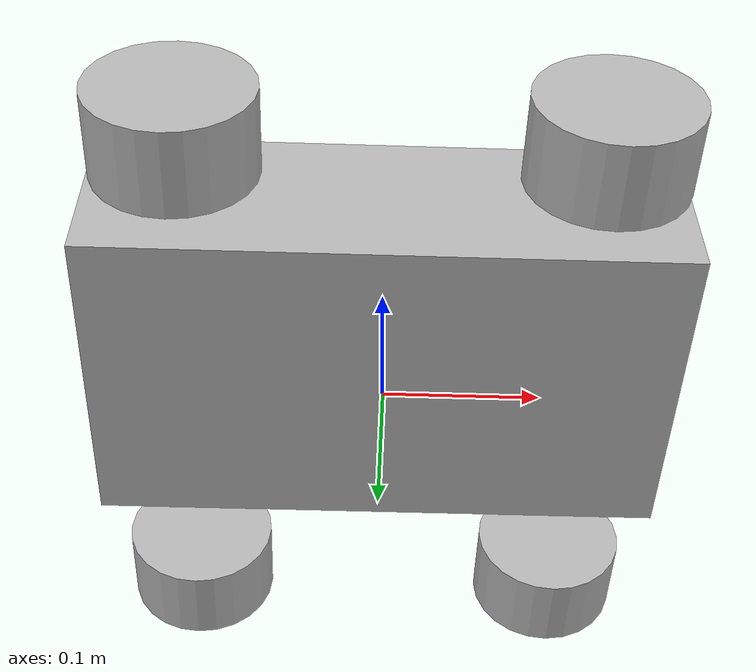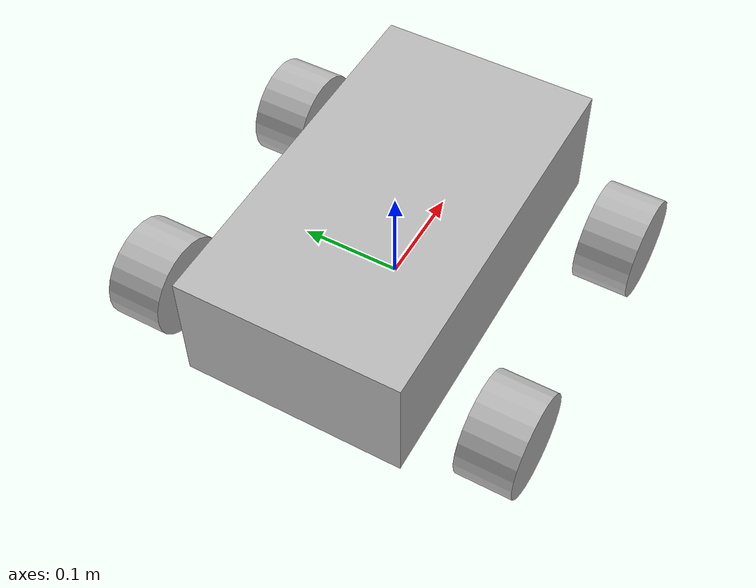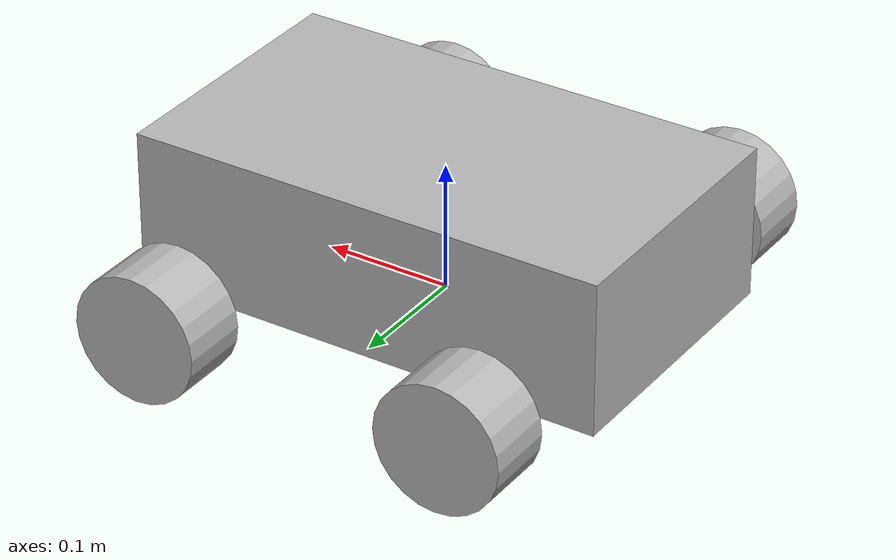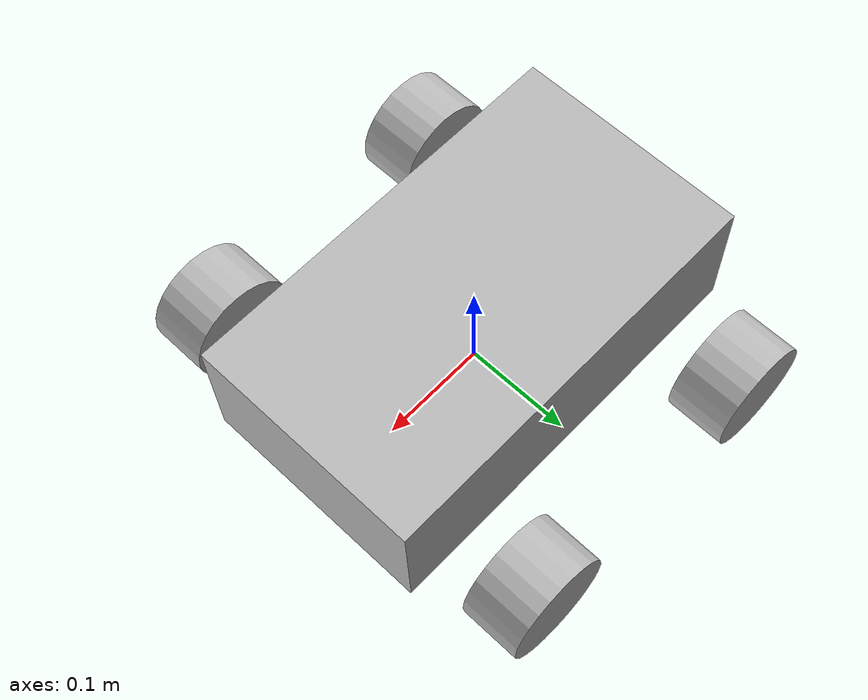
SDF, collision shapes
<?xml version='1.0'?>
<sdf version='1.5'>
  <model name="eduard-mecanum-swarm-3">
    <static>false</static>
    <pose>0 0 0 0 0 0</pose>
      <!-- chassis -->
      <link name="chassis">
        <pose>0 0 0 0 0 0</pose>
        <inertial>
          <pose>0 0 0 0 0 0</pose>
          <mass>5.0</mass>
          <inertia>
            <ixx>9.885e-1</ixx>
            <iyy>2.099e0</iyy>
            <izz>1.317e0</izz>
            <ixy>-7.521e-4</ixy>
            <ixz>1.126e-3</ixz>
            <iyz>6.915e-3</iyz>
          </inertia>
        </inertial>
        <visual name="visual">
          <geometry>
            <mesh>
              <uri>model://eduard_offroad/mesh/eduard-chassis.dae</uri>
            </mesh>
          </geometry>
        </visual>
        <collision name="collision">
          <pose>0 0 0.06 0 0 0</pose>
          <geometry>
            <box>
              <size>0.38 0.22 0.12</size>
            </box>
          </geometry>
        </collision>
      </link>

      <!-- wheel front left -->
      <link name="wheel_front_left">
        <pose>0.125 0.18 0.02 1.570796327 0 0</pose>
        <inertial>
          <pose>0 0 0 0 0 0</pose>
          <mass>0.3</mass>
          <inertia>
            <ixx>3.0e-5</ixx>
            <iyy>3.0e-5</iyy>
            <izz>5.0e-5</izz>
            <ixy>0</ixy>
            <ixz>0</ixz>
            <iyz>0</iyz>
          </inertia>
        </inertial>
        <visual name="visual">
          <geometry>
            <mesh>
              <uri>model://eduard_mecanum/mesh/mecanum-wheel-left-eduard.dae</uri>
            </mesh>
          </geometry>
        </visual>
        <collision name="collision">
          <pose>0 0 0 0 0 0</pose>
          <geometry>
            <cylinder>
              <radius>0.05</radius>
              <length>0.055</length>
            </cylinder>
          </geometry>
          <max_contacts>10</max_contacts>
          <surface>
            <friction>
              <torsional>
                <coefficient>0.9</coefficient>
                <surface_radius>0.0865</surface_radius>
                <use_patch_radius>false</use_patch_radius>
                <ode>
                  <slip>0.02</slip>
                </ode>
              </torsional>
            </friction>
            <contact>
              <ode>
                <min_depth>0.005</min_depth>
              </ode>
            </contact>
          </surface>
        </collision>
      </link>

      <!-- wheel front right -->
      <link name="wheel_front_right">
        <pose>0.125 -0.18 0.02 -1.570796327 0 0</pose>
        <inertial>
          <pose>0 0 0 0 0 0</pose>
          <mass>0.3</mass>
          <inertia>
            <ixx>3.0e-5</ixx>
            <iyy>3.0e-5</iyy>
            <izz>5.0e-5</izz>
            <ixy>0</ixy>
            <ixz>0</ixz>
            <iyz>0</iyz>
          </inertia>
        </inertial>
        <visual name="visual">
          <geometry>
            <mesh>
              <uri>model://eduard_mecanum/mesh/mecanum-wheel-right-eduard.dae</uri>
            </mesh>
          </geometry>
        </visual>
        <collision name="collision">
          <pose>0 0 0 0 0 0</pose>
          <geometry>
            <cylinder>
              <radius>0.05</radius>
              <length>0.055</length>
            </cylinder>
          </geometry>
          <max_contacts>10</max_contacts>
          <surface>
            <friction>
              <torsional>
                <coefficient>0.9</coefficient>
                <surface_radius>0.0865</surface_radius>
                <use_patch_radius>false</use_patch_radius>
                <ode>
                  <slip>0.02</slip>
                </ode>
              </torsional>
            </friction>
            <contact>
              <ode>
                <min_depth>0.005</min_depth>
              </ode>
            </contact>
          </surface>
        </collision>
      </link>

      <!-- wheel rear left -->
      <link name="wheel_rear_left">
        <pose>-0.125 0.18 0.02 1.570796327 0 0</pose>
        <inertial>
          <pose>0 0 0 0 0 0</pose>
          <mass>0.3</mass>
          <inertia>
            <ixx>3.0e-5</ixx>
            <iyy>3.0e-5</iyy>
            <izz>5.0e-5</izz>
            <ixy>0</ixy>
            <ixz>0</ixz>
            <iyz>0</iyz>
          </inertia>
        </inertial>
        <visual name="visual">
          <geometry>
            <mesh>
              <uri>model://eduard_mecanum/mesh/mecanum-wheel-right-eduard.dae</uri>
            </mesh>
          </geometry>
        </visual>
        <collision name="collision">
          <pose>0 0 0 0 0 0</pose>
          <geometry>
            <cylinder>
              <radius>0.05</radius>
              <length>0.055</length>
            </cylinder>
          </geometry>
          <max_contacts>10</max_contacts>
          <surface>
            <friction>
              <torsional>
                <coefficient>0.9</coefficient>
                <surface_radius>0.0865</surface_radius>
                <use_patch_radius>false</use_patch_radius>
                <ode>
                  <slip>0.02</slip>
                </ode>
              </torsional>
            </friction>
            <contact>
              <ode>
                <min_depth>0.005</min_depth>
              </ode>
            </contact>
          </surface>
        </collision>
      </link>

      <!-- wheel rear right -->
      <link name="wheel_rear_right">
        <pose>-0.125 -0.18 0.02 -1.570796327 0 0</pose>
        <inertial>
          <pose>0 0 0 0 0 0</pose>
          <mass>0.3</mass>
          <inertia>
            <ixx>3.0e-5</ixx>
            <iyy>3.0e-5</iyy>
            <izz>5.0e-5</izz>
            <ixy>0</ixy>
            <ixz>0</ixz>
            <iyz>0</iyz>
          </inertia>
        </inertial>
        <visual name="visual">
          <geometry>
            <mesh>
              <uri>model://eduard_mecanum/mesh/mecanum-wheel-left-eduard.dae</uri>
            </mesh>
          </geometry>
        </visual>
        <collision name="collision">
          <pose>0 0 0 0 0 0</pose>
          <geometry>
            <cylinder>
              <radius>0.05</radius>
              <length>0.055</length>
            </cylinder>
          </geometry>
          <max_contacts>10</max_contacts>
          <surface>
            <friction>
              <torsional>
                <coefficient>0.9</coefficient>
                <surface_radius>0.0865</surface_radius>
                <use_patch_radius>false</use_patch_radius>
                <ode>
                  <slip>0.02</slip>
                </ode>
              </torsional>
            </friction>
            <contact>
              <ode>
                <min_depth>0.005</min_depth>
              </ode>
            </contact>
          </surface>
        </collision>
      </link>

      <!-- Joints. -->
      <joint type="revolute" name="axis_front_left">
        <pose>0 0 0 0 0 0</pose>
        <child>wheel_front_left</child>
        <parent>chassis</parent>
        <axis>
          <xyz>0 0 1</xyz>
        </axis>
      </joint>
      <joint type="revolute" name="axis_front_right">
        <pose>0 0 0 0 0 0</pose>
        <child>wheel_front_right</child>
        <parent>chassis</parent>
        <axis>
          <xyz>0 0 1</xyz>
        </axis>
      </joint>
      <joint type="revolute" name="axis_rear_left">
        <pose>0 0 0 0 0 0</pose>
        <child>wheel_rear_left</child>
        <parent>chassis</parent>
        <axis>
          <xyz>0 0 1</xyz>
        </axis>
      </joint>
      <joint type="revolute" name="axis_rear_right">
        <pose>0 0 0 0 0 0</pose>
        <child>wheel_rear_right</child>
        <parent>chassis</parent>
        <axis>
          <xyz>0 0 1</xyz>
        </axis>
      </joint>

      <!-- plugins to control robot behavior -->
      <plugin name="gazebo_ros_planar_move" filename="libgazebo_ros_planar_move.so">
       <ros>
         <!-- Add a namespace -->
         <namespace>/swarm_3</namespace>
         <!-- Remap the default topic -->
       </ros>
       <update_rate>100</update_rate>
       <publish_rate>10</publish_rate>
       <!-- output -->
       <publish_odom>true</publish_odom>
       <publish_odom_tf>true</publish_odom_tf>
       <odometry_frame>odom</odometry_frame>
       <robot_base_frame>chassis</robot_base_frame>
       <covariance_x>0.0001</covariance_x>
       <covariance_y>0.0001</covariance_y>
       <covariance_yaw>0.01</covariance_yaw>
     </plugin>
    </model>
</sdf>
